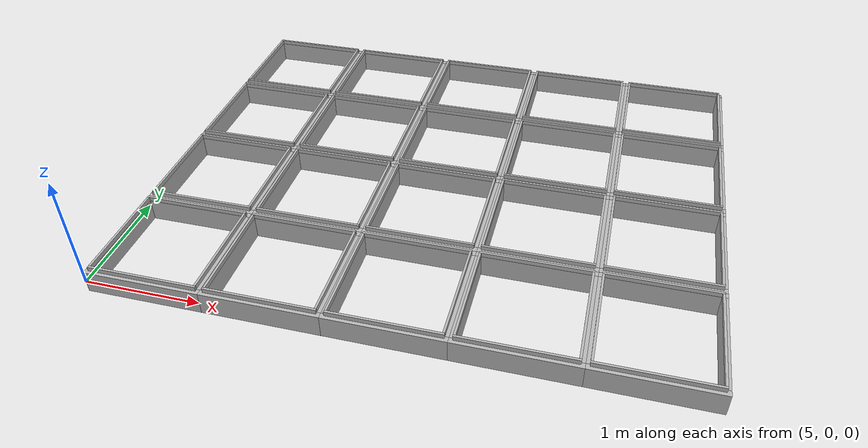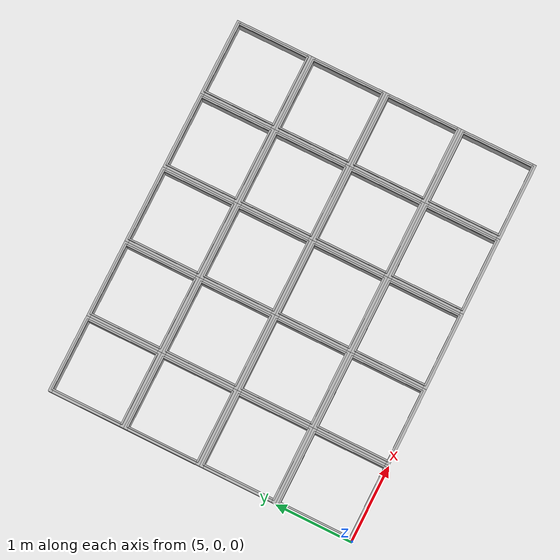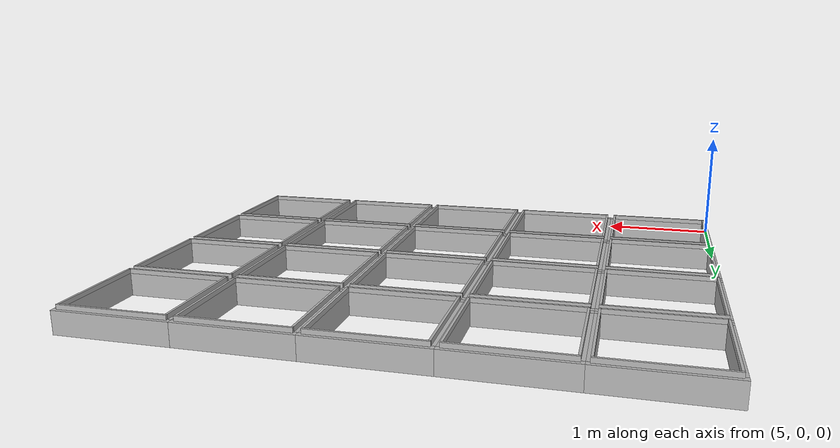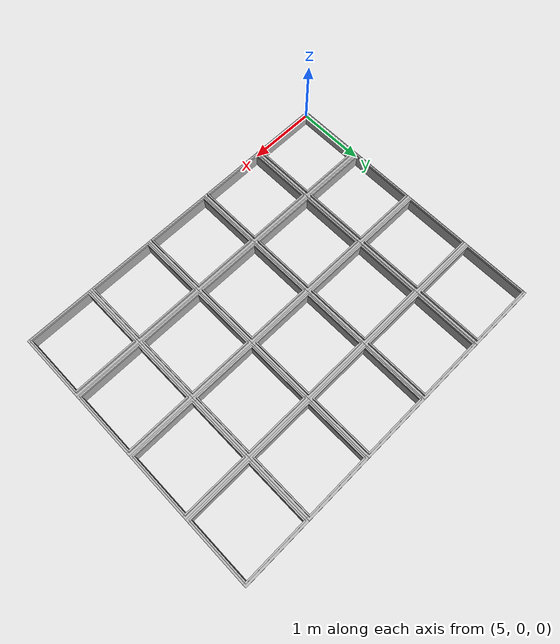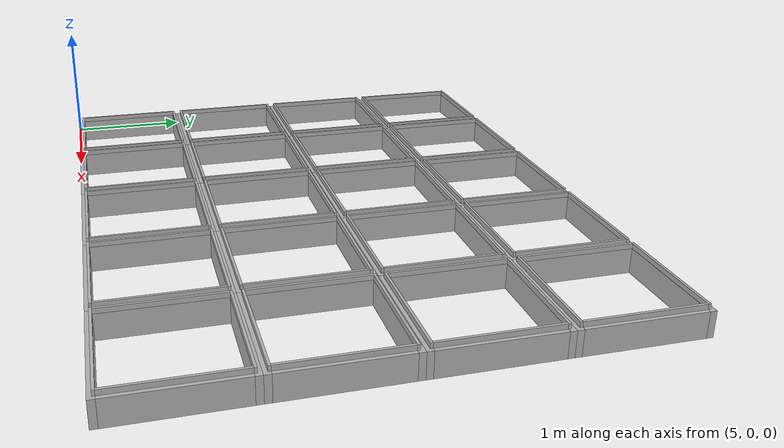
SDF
<sdf version="1.4">
 <model name="Auto Store Frame">
  <static>true</static>
  <link name="cell_50">
   <pose>5.5 0.5 0 0 0 0</pose>
   <collision name="frame_collision_x1">
    <pose>0 -0.475 0 0 0 0</pose>
    <geometry><box><size>1 0.05 0.2 0 0 0</size></box></geometry>
   </collision>
   <collision name="frame_collision_x2">
    <pose>0 0.475 0 0 0 0</pose>
    <geometry><box><size>1 0.05 0.2 0 0 0</size></box></geometry>
   </collision>
   <collision name="frame_collision_y1">
    <pose>-0.475 0 0 0 0 0</pose>
    <geometry><box><size>0.05 0.9 0.2 0 0 0</size></box></geometry>
   </collision>
   <collision name="frame_collision_y2">
    <pose>0.475 0 0 0 0 0</pose>
    <geometry><box><size>0.05 0.9 0.2 0 0 0</size></box></geometry>
   </collision>
   <collision name="guide_collision_x1">
    <pose>0 -0.46 0.12 0 0 0</pose>
    <geometry><box><size>0.94 0.02 0.04 0 0 0</size></box></geometry>
   </collision>
   <collision name="guide_collision_x2">
    <pose>0 0.46 0.12 0 0 0</pose>
    <geometry><box><size>0.94 0.02 0.04 0 0 0</size></box></geometry>
   </collision>
   <collision name="guide_collision_y1">
    <pose>-0.46 0 0.12 0 0 0</pose>
    <geometry><box><size>0.02 0.9 0.04 0 0 0</size></box></geometry>
   </collision>
   <collision name="guide_collision_y2">
    <pose>0.46 0 0.12 0 0 0</pose>
    <geometry><box><size>0.02 0.9 0.04 0 0 0</size></box></geometry>
   </collision>
   <visual name="frame_visual_x1">
    <pose>0 -0.475 0 0 0 0</pose>
    <geometry><box><size>1 0.05 0.2 0 0 0</size></box></geometry>
   </visual>
   <visual name="frame_visual_x2">
    <pose>0 0.475 0 0 0 0</pose>
    <geometry><box><size>1 0.05 0.2 0 0 0</size></box></geometry>
   </visual>
   <visual name="frame_visual_y1">
    <pose>-0.475 0 0 0 0 0</pose>
    <geometry><box><size>0.05 0.9 0.2 0 0 0</size></box></geometry>
   </visual>
   <visual name="frame_visual_y2">
    <pose>0.475 0 0 0 0 0</pose>
    <geometry><box><size>0.05 0.9 0.2 0 0 0</size></box></geometry>
   </visual>
   <visual name="guide_visual_x1">
    <pose>0 -0.46 0.12 0 0 0</pose>
    <geometry><box><size>0.94 0.02 0.04 0 0 0</size></box></geometry>
   </visual>
   <visual name="guide_visual_x2">
    <pose>0 0.46 0.12 0 0 0</pose>
    <geometry><box><size>0.94 0.02 0.04 0 0 0</size></box></geometry>
   </visual>
   <visual name="guide_visual_y1">
    <pose>-0.46 0 0.12 0 0 0</pose>
    <geometry><box><size>0.02 0.9 0.04 0 0 0</size></box></geometry>
   </visual>
   <visual name="guide_visual_y2">
    <pose>0.46 0 0.12 0 0 0</pose>
    <geometry><box><size>0.02 0.9 0.04 0 0 0</size></box></geometry>
   </visual>
  </link>
  <link name="cell_51">
   <pose>5.5 1.5 0 0 0 0</pose>
   <collision name="frame_collision_x1">
    <pose>0 -0.475 0 0 0 0</pose>
    <geometry><box><size>1 0.05 0.2 0 0 0</size></box></geometry>
   </collision>
   <collision name="frame_collision_x2">
    <pose>0 0.475 0 0 0 0</pose>
    <geometry><box><size>1 0.05 0.2 0 0 0</size></box></geometry>
   </collision>
   <collision name="frame_collision_y1">
    <pose>-0.475 0 0 0 0 0</pose>
    <geometry><box><size>0.05 0.9 0.2 0 0 0</size></box></geometry>
   </collision>
   <collision name="frame_collision_y2">
    <pose>0.475 0 0 0 0 0</pose>
    <geometry><box><size>0.05 0.9 0.2 0 0 0</size></box></geometry>
   </collision>
   <collision name="guide_collision_x1">
    <pose>0 -0.46 0.12 0 0 0</pose>
    <geometry><box><size>0.94 0.02 0.04 0 0 0</size></box></geometry>
   </collision>
   <collision name="guide_collision_x2">
    <pose>0 0.46 0.12 0 0 0</pose>
    <geometry><box><size>0.94 0.02 0.04 0 0 0</size></box></geometry>
   </collision>
   <collision name="guide_collision_y1">
    <pose>-0.46 0 0.12 0 0 0</pose>
    <geometry><box><size>0.02 0.9 0.04 0 0 0</size></box></geometry>
   </collision>
   <collision name="guide_collision_y2">
    <pose>0.46 0 0.12 0 0 0</pose>
    <geometry><box><size>0.02 0.9 0.04 0 0 0</size></box></geometry>
   </collision>
   <visual name="frame_visual_x1">
    <pose>0 -0.475 0 0 0 0</pose>
    <geometry><box><size>1 0.05 0.2 0 0 0</size></box></geometry>
   </visual>
   <visual name="frame_visual_x2">
    <pose>0 0.475 0 0 0 0</pose>
    <geometry><box><size>1 0.05 0.2 0 0 0</size></box></geometry>
   </visual>
   <visual name="frame_visual_y1">
    <pose>-0.475 0 0 0 0 0</pose>
    <geometry><box><size>0.05 0.9 0.2 0 0 0</size></box></geometry>
   </visual>
   <visual name="frame_visual_y2">
    <pose>0.475 0 0 0 0 0</pose>
    <geometry><box><size>0.05 0.9 0.2 0 0 0</size></box></geometry>
   </visual>
   <visual name="guide_visual_x1">
    <pose>0 -0.46 0.12 0 0 0</pose>
    <geometry><box><size>0.94 0.02 0.04 0 0 0</size></box></geometry>
   </visual>
   <visual name="guide_visual_x2">
    <pose>0 0.46 0.12 0 0 0</pose>
    <geometry><box><size>0.94 0.02 0.04 0 0 0</size></box></geometry>
   </visual>
   <visual name="guide_visual_y1">
    <pose>-0.46 0 0.12 0 0 0</pose>
    <geometry><box><size>0.02 0.9 0.04 0 0 0</size></box></geometry>
   </visual>
   <visual name="guide_visual_y2">
    <pose>0.46 0 0.12 0 0 0</pose>
    <geometry><box><size>0.02 0.9 0.04 0 0 0</size></box></geometry>
   </visual>
  </link>
  <link name="cell_52">
   <pose>5.5 2.5 0 0 0 0</pose>
   <collision name="frame_collision_x1">
    <pose>0 -0.475 0 0 0 0</pose>
    <geometry><box><size>1 0.05 0.2 0 0 0</size></box></geometry>
   </collision>
   <collision name="frame_collision_x2">
    <pose>0 0.475 0 0 0 0</pose>
    <geometry><box><size>1 0.05 0.2 0 0 0</size></box></geometry>
   </collision>
   <collision name="frame_collision_y1">
    <pose>-0.475 0 0 0 0 0</pose>
    <geometry><box><size>0.05 0.9 0.2 0 0 0</size></box></geometry>
   </collision>
   <collision name="frame_collision_y2">
    <pose>0.475 0 0 0 0 0</pose>
    <geometry><box><size>0.05 0.9 0.2 0 0 0</size></box></geometry>
   </collision>
   <collision name="guide_collision_x1">
    <pose>0 -0.46 0.12 0 0 0</pose>
    <geometry><box><size>0.94 0.02 0.04 0 0 0</size></box></geometry>
   </collision>
   <collision name="guide_collision_x2">
    <pose>0 0.46 0.12 0 0 0</pose>
    <geometry><box><size>0.94 0.02 0.04 0 0 0</size></box></geometry>
   </collision>
   <collision name="guide_collision_y1">
    <pose>-0.46 0 0.12 0 0 0</pose>
    <geometry><box><size>0.02 0.9 0.04 0 0 0</size></box></geometry>
   </collision>
   <collision name="guide_collision_y2">
    <pose>0.46 0 0.12 0 0 0</pose>
    <geometry><box><size>0.02 0.9 0.04 0 0 0</size></box></geometry>
   </collision>
   <visual name="frame_visual_x1">
    <pose>0 -0.475 0 0 0 0</pose>
    <geometry><box><size>1 0.05 0.2 0 0 0</size></box></geometry>
   </visual>
   <visual name="frame_visual_x2">
    <pose>0 0.475 0 0 0 0</pose>
    <geometry><box><size>1 0.05 0.2 0 0 0</size></box></geometry>
   </visual>
   <visual name="frame_visual_y1">
    <pose>-0.475 0 0 0 0 0</pose>
    <geometry><box><size>0.05 0.9 0.2 0 0 0</size></box></geometry>
   </visual>
   <visual name="frame_visual_y2">
    <pose>0.475 0 0 0 0 0</pose>
    <geometry><box><size>0.05 0.9 0.2 0 0 0</size></box></geometry>
   </visual>
   <visual name="guide_visual_x1">
    <pose>0 -0.46 0.12 0 0 0</pose>
    <geometry><box><size>0.94 0.02 0.04 0 0 0</size></box></geometry>
   </visual>
   <visual name="guide_visual_x2">
    <pose>0 0.46 0.12 0 0 0</pose>
    <geometry><box><size>0.94 0.02 0.04 0 0 0</size></box></geometry>
   </visual>
   <visual name="guide_visual_y1">
    <pose>-0.46 0 0.12 0 0 0</pose>
    <geometry><box><size>0.02 0.9 0.04 0 0 0</size></box></geometry>
   </visual>
   <visual name="guide_visual_y2">
    <pose>0.46 0 0.12 0 0 0</pose>
    <geometry><box><size>0.02 0.9 0.04 0 0 0</size></box></geometry>
   </visual>
  </link>
  <link name="cell_53">
   <pose>5.5 3.5 0 0 0 0</pose>
   <collision name="frame_collision_x1">
    <pose>0 -0.475 0 0 0 0</pose>
    <geometry><box><size>1 0.05 0.2 0 0 0</size></box></geometry>
   </collision>
   <collision name="frame_collision_x2">
    <pose>0 0.475 0 0 0 0</pose>
    <geometry><box><size>1 0.05 0.2 0 0 0</size></box></geometry>
   </collision>
   <collision name="frame_collision_y1">
    <pose>-0.475 0 0 0 0 0</pose>
    <geometry><box><size>0.05 0.9 0.2 0 0 0</size></box></geometry>
   </collision>
   <collision name="frame_collision_y2">
    <pose>0.475 0 0 0 0 0</pose>
    <geometry><box><size>0.05 0.9 0.2 0 0 0</size></box></geometry>
   </collision>
   <collision name="guide_collision_x1">
    <pose>0 -0.46 0.12 0 0 0</pose>
    <geometry><box><size>0.94 0.02 0.04 0 0 0</size></box></geometry>
   </collision>
   <collision name="guide_collision_x2">
    <pose>0 0.46 0.12 0 0 0</pose>
    <geometry><box><size>0.94 0.02 0.04 0 0 0</size></box></geometry>
   </collision>
   <collision name="guide_collision_y1">
    <pose>-0.46 0 0.12 0 0 0</pose>
    <geometry><box><size>0.02 0.9 0.04 0 0 0</size></box></geometry>
   </collision>
   <collision name="guide_collision_y2">
    <pose>0.46 0 0.12 0 0 0</pose>
    <geometry><box><size>0.02 0.9 0.04 0 0 0</size></box></geometry>
   </collision>
   <visual name="frame_visual_x1">
    <pose>0 -0.475 0 0 0 0</pose>
    <geometry><box><size>1 0.05 0.2 0 0 0</size></box></geometry>
   </visual>
   <visual name="frame_visual_x2">
    <pose>0 0.475 0 0 0 0</pose>
    <geometry><box><size>1 0.05 0.2 0 0 0</size></box></geometry>
   </visual>
   <visual name="frame_visual_y1">
    <pose>-0.475 0 0 0 0 0</pose>
    <geometry><box><size>0.05 0.9 0.2 0 0 0</size></box></geometry>
   </visual>
   <visual name="frame_visual_y2">
    <pose>0.475 0 0 0 0 0</pose>
    <geometry><box><size>0.05 0.9 0.2 0 0 0</size></box></geometry>
   </visual>
   <visual name="guide_visual_x1">
    <pose>0 -0.46 0.12 0 0 0</pose>
    <geometry><box><size>0.94 0.02 0.04 0 0 0</size></box></geometry>
   </visual>
   <visual name="guide_visual_x2">
    <pose>0 0.46 0.12 0 0 0</pose>
    <geometry><box><size>0.94 0.02 0.04 0 0 0</size></box></geometry>
   </visual>
   <visual name="guide_visual_y1">
    <pose>-0.46 0 0.12 0 0 0</pose>
    <geometry><box><size>0.02 0.9 0.04 0 0 0</size></box></geometry>
   </visual>
   <visual name="guide_visual_y2">
    <pose>0.46 0 0.12 0 0 0</pose>
    <geometry><box><size>0.02 0.9 0.04 0 0 0</size></box></geometry>
   </visual>
  </link>
  <link name="cell_60">
   <pose>6.5 0.5 0 0 0 0</pose>
   <collision name="frame_collision_x1">
    <pose>0 -0.475 0 0 0 0</pose>
    <geometry><box><size>1 0.05 0.2 0 0 0</size></box></geometry>
   </collision>
   <collision name="frame_collision_x2">
    <pose>0 0.475 0 0 0 0</pose>
    <geometry><box><size>1 0.05 0.2 0 0 0</size></box></geometry>
   </collision>
   <collision name="frame_collision_y1">
    <pose>-0.475 0 0 0 0 0</pose>
    <geometry><box><size>0.05 0.9 0.2 0 0 0</size></box></geometry>
   </collision>
   <collision name="frame_collision_y2">
    <pose>0.475 0 0 0 0 0</pose>
    <geometry><box><size>0.05 0.9 0.2 0 0 0</size></box></geometry>
   </collision>
   <collision name="guide_collision_x1">
    <pose>0 -0.46 0.12 0 0 0</pose>
    <geometry><box><size>0.94 0.02 0.04 0 0 0</size></box></geometry>
   </collision>
   <collision name="guide_collision_x2">
    <pose>0 0.46 0.12 0 0 0</pose>
    <geometry><box><size>0.94 0.02 0.04 0 0 0</size></box></geometry>
   </collision>
   <collision name="guide_collision_y1">
    <pose>-0.46 0 0.12 0 0 0</pose>
    <geometry><box><size>0.02 0.9 0.04 0 0 0</size></box></geometry>
   </collision>
   <collision name="guide_collision_y2">
    <pose>0.46 0 0.12 0 0 0</pose>
    <geometry><box><size>0.02 0.9 0.04 0 0 0</size></box></geometry>
   </collision>
   <visual name="frame_visual_x1">
    <pose>0 -0.475 0 0 0 0</pose>
    <geometry><box><size>1 0.05 0.2 0 0 0</size></box></geometry>
   </visual>
   <visual name="frame_visual_x2">
    <pose>0 0.475 0 0 0 0</pose>
    <geometry><box><size>1 0.05 0.2 0 0 0</size></box></geometry>
   </visual>
   <visual name="frame_visual_y1">
    <pose>-0.475 0 0 0 0 0</pose>
    <geometry><box><size>0.05 0.9 0.2 0 0 0</size></box></geometry>
   </visual>
   <visual name="frame_visual_y2">
    <pose>0.475 0 0 0 0 0</pose>
    <geometry><box><size>0.05 0.9 0.2 0 0 0</size></box></geometry>
   </visual>
   <visual name="guide_visual_x1">
    <pose>0 -0.46 0.12 0 0 0</pose>
    <geometry><box><size>0.94 0.02 0.04 0 0 0</size></box></geometry>
   </visual>
   <visual name="guide_visual_x2">
    <pose>0 0.46 0.12 0 0 0</pose>
    <geometry><box><size>0.94 0.02 0.04 0 0 0</size></box></geometry>
   </visual>
   <visual name="guide_visual_y1">
    <pose>-0.46 0 0.12 0 0 0</pose>
    <geometry><box><size>0.02 0.9 0.04 0 0 0</size></box></geometry>
   </visual>
   <visual name="guide_visual_y2">
    <pose>0.46 0 0.12 0 0 0</pose>
    <geometry><box><size>0.02 0.9 0.04 0 0 0</size></box></geometry>
   </visual>
  </link>
  <link name="cell_61">
   <pose>6.5 1.5 0 0 0 0</pose>
   <collision name="frame_collision_x1">
    <pose>0 -0.475 0 0 0 0</pose>
    <geometry><box><size>1 0.05 0.2 0 0 0</size></box></geometry>
   </collision>
   <collision name="frame_collision_x2">
    <pose>0 0.475 0 0 0 0</pose>
    <geometry><box><size>1 0.05 0.2 0 0 0</size></box></geometry>
   </collision>
   <collision name="frame_collision_y1">
    <pose>-0.475 0 0 0 0 0</pose>
    <geometry><box><size>0.05 0.9 0.2 0 0 0</size></box></geometry>
   </collision>
   <collision name="frame_collision_y2">
    <pose>0.475 0 0 0 0 0</pose>
    <geometry><box><size>0.05 0.9 0.2 0 0 0</size></box></geometry>
   </collision>
   <collision name="guide_collision_x1">
    <pose>0 -0.46 0.12 0 0 0</pose>
    <geometry><box><size>0.94 0.02 0.04 0 0 0</size></box></geometry>
   </collision>
   <collision name="guide_collision_x2">
    <pose>0 0.46 0.12 0 0 0</pose>
    <geometry><box><size>0.94 0.02 0.04 0 0 0</size></box></geometry>
   </collision>
   <collision name="guide_collision_y1">
    <pose>-0.46 0 0.12 0 0 0</pose>
    <geometry><box><size>0.02 0.9 0.04 0 0 0</size></box></geometry>
   </collision>
   <collision name="guide_collision_y2">
    <pose>0.46 0 0.12 0 0 0</pose>
    <geometry><box><size>0.02 0.9 0.04 0 0 0</size></box></geometry>
   </collision>
   <visual name="frame_visual_x1">
    <pose>0 -0.475 0 0 0 0</pose>
    <geometry><box><size>1 0.05 0.2 0 0 0</size></box></geometry>
   </visual>
   <visual name="frame_visual_x2">
    <pose>0 0.475 0 0 0 0</pose>
    <geometry><box><size>1 0.05 0.2 0 0 0</size></box></geometry>
   </visual>
   <visual name="frame_visual_y1">
    <pose>-0.475 0 0 0 0 0</pose>
    <geometry><box><size>0.05 0.9 0.2 0 0 0</size></box></geometry>
   </visual>
   <visual name="frame_visual_y2">
    <pose>0.475 0 0 0 0 0</pose>
    <geometry><box><size>0.05 0.9 0.2 0 0 0</size></box></geometry>
   </visual>
   <visual name="guide_visual_x1">
    <pose>0 -0.46 0.12 0 0 0</pose>
    <geometry><box><size>0.94 0.02 0.04 0 0 0</size></box></geometry>
   </visual>
   <visual name="guide_visual_x2">
    <pose>0 0.46 0.12 0 0 0</pose>
    <geometry><box><size>0.94 0.02 0.04 0 0 0</size></box></geometry>
   </visual>
   <visual name="guide_visual_y1">
    <pose>-0.46 0 0.12 0 0 0</pose>
    <geometry><box><size>0.02 0.9 0.04 0 0 0</size></box></geometry>
   </visual>
   <visual name="guide_visual_y2">
    <pose>0.46 0 0.12 0 0 0</pose>
    <geometry><box><size>0.02 0.9 0.04 0 0 0</size></box></geometry>
   </visual>
  </link>
  <link name="cell_62">
   <pose>6.5 2.5 0 0 0 0</pose>
   <collision name="frame_collision_x1">
    <pose>0 -0.475 0 0 0 0</pose>
    <geometry><box><size>1 0.05 0.2 0 0 0</size></box></geometry>
   </collision>
   <collision name="frame_collision_x2">
    <pose>0 0.475 0 0 0 0</pose>
    <geometry><box><size>1 0.05 0.2 0 0 0</size></box></geometry>
   </collision>
   <collision name="frame_collision_y1">
    <pose>-0.475 0 0 0 0 0</pose>
    <geometry><box><size>0.05 0.9 0.2 0 0 0</size></box></geometry>
   </collision>
   <collision name="frame_collision_y2">
    <pose>0.475 0 0 0 0 0</pose>
    <geometry><box><size>0.05 0.9 0.2 0 0 0</size></box></geometry>
   </collision>
   <collision name="guide_collision_x1">
    <pose>0 -0.46 0.12 0 0 0</pose>
    <geometry><box><size>0.94 0.02 0.04 0 0 0</size></box></geometry>
   </collision>
   <collision name="guide_collision_x2">
    <pose>0 0.46 0.12 0 0 0</pose>
    <geometry><box><size>0.94 0.02 0.04 0 0 0</size></box></geometry>
   </collision>
   <collision name="guide_collision_y1">
    <pose>-0.46 0 0.12 0 0 0</pose>
    <geometry><box><size>0.02 0.9 0.04 0 0 0</size></box></geometry>
   </collision>
   <collision name="guide_collision_y2">
    <pose>0.46 0 0.12 0 0 0</pose>
    <geometry><box><size>0.02 0.9 0.04 0 0 0</size></box></geometry>
   </collision>
   <visual name="frame_visual_x1">
    <pose>0 -0.475 0 0 0 0</pose>
    <geometry><box><size>1 0.05 0.2 0 0 0</size></box></geometry>
   </visual>
   <visual name="frame_visual_x2">
    <pose>0 0.475 0 0 0 0</pose>
    <geometry><box><size>1 0.05 0.2 0 0 0</size></box></geometry>
   </visual>
   <visual name="frame_visual_y1">
    <pose>-0.475 0 0 0 0 0</pose>
    <geometry><box><size>0.05 0.9 0.2 0 0 0</size></box></geometry>
   </visual>
   <visual name="frame_visual_y2">
    <pose>0.475 0 0 0 0 0</pose>
    <geometry><box><size>0.05 0.9 0.2 0 0 0</size></box></geometry>
   </visual>
   <visual name="guide_visual_x1">
    <pose>0 -0.46 0.12 0 0 0</pose>
    <geometry><box><size>0.94 0.02 0.04 0 0 0</size></box></geometry>
   </visual>
   <visual name="guide_visual_x2">
    <pose>0 0.46 0.12 0 0 0</pose>
    <geometry><box><size>0.94 0.02 0.04 0 0 0</size></box></geometry>
   </visual>
   <visual name="guide_visual_y1">
    <pose>-0.46 0 0.12 0 0 0</pose>
    <geometry><box><size>0.02 0.9 0.04 0 0 0</size></box></geometry>
   </visual>
   <visual name="guide_visual_y2">
    <pose>0.46 0 0.12 0 0 0</pose>
    <geometry><box><size>0.02 0.9 0.04 0 0 0</size></box></geometry>
   </visual>
  </link>
  <link name="cell_63">
   <pose>6.5 3.5 0 0 0 0</pose>
   <collision name="frame_collision_x1">
    <pose>0 -0.475 0 0 0 0</pose>
    <geometry><box><size>1 0.05 0.2 0 0 0</size></box></geometry>
   </collision>
   <collision name="frame_collision_x2">
    <pose>0 0.475 0 0 0 0</pose>
    <geometry><box><size>1 0.05 0.2 0 0 0</size></box></geometry>
   </collision>
   <collision name="frame_collision_y1">
    <pose>-0.475 0 0 0 0 0</pose>
    <geometry><box><size>0.05 0.9 0.2 0 0 0</size></box></geometry>
   </collision>
   <collision name="frame_collision_y2">
    <pose>0.475 0 0 0 0 0</pose>
    <geometry><box><size>0.05 0.9 0.2 0 0 0</size></box></geometry>
   </collision>
   <collision name="guide_collision_x1">
    <pose>0 -0.46 0.12 0 0 0</pose>
    <geometry><box><size>0.94 0.02 0.04 0 0 0</size></box></geometry>
   </collision>
   <collision name="guide_collision_x2">
    <pose>0 0.46 0.12 0 0 0</pose>
    <geometry><box><size>0.94 0.02 0.04 0 0 0</size></box></geometry>
   </collision>
   <collision name="guide_collision_y1">
    <pose>-0.46 0 0.12 0 0 0</pose>
    <geometry><box><size>0.02 0.9 0.04 0 0 0</size></box></geometry>
   </collision>
   <collision name="guide_collision_y2">
    <pose>0.46 0 0.12 0 0 0</pose>
    <geometry><box><size>0.02 0.9 0.04 0 0 0</size></box></geometry>
   </collision>
   <visual name="frame_visual_x1">
    <pose>0 -0.475 0 0 0 0</pose>
    <geometry><box><size>1 0.05 0.2 0 0 0</size></box></geometry>
   </visual>
   <visual name="frame_visual_x2">
    <pose>0 0.475 0 0 0 0</pose>
    <geometry><box><size>1 0.05 0.2 0 0 0</size></box></geometry>
   </visual>
   <visual name="frame_visual_y1">
    <pose>-0.475 0 0 0 0 0</pose>
    <geometry><box><size>0.05 0.9 0.2 0 0 0</size></box></geometry>
   </visual>
   <visual name="frame_visual_y2">
    <pose>0.475 0 0 0 0 0</pose>
    <geometry><box><size>0.05 0.9 0.2 0 0 0</size></box></geometry>
   </visual>
   <visual name="guide_visual_x1">
    <pose>0 -0.46 0.12 0 0 0</pose>
    <geometry><box><size>0.94 0.02 0.04 0 0 0</size></box></geometry>
   </visual>
   <visual name="guide_visual_x2">
    <pose>0 0.46 0.12 0 0 0</pose>
    <geometry><box><size>0.94 0.02 0.04 0 0 0</size></box></geometry>
   </visual>
   <visual name="guide_visual_y1">
    <pose>-0.46 0 0.12 0 0 0</pose>
    <geometry><box><size>0.02 0.9 0.04 0 0 0</size></box></geometry>
   </visual>
   <visual name="guide_visual_y2">
    <pose>0.46 0 0.12 0 0 0</pose>
    <geometry><box><size>0.02 0.9 0.04 0 0 0</size></box></geometry>
   </visual>
  </link>
  <link name="cell_70">
   <pose>7.5 0.5 0 0 0 0</pose>
   <collision name="frame_collision_x1">
    <pose>0 -0.475 0 0 0 0</pose>
    <geometry><box><size>1 0.05 0.2 0 0 0</size></box></geometry>
   </collision>
   <collision name="frame_collision_x2">
    <pose>0 0.475 0 0 0 0</pose>
    <geometry><box><size>1 0.05 0.2 0 0 0</size></box></geometry>
   </collision>
   <collision name="frame_collision_y1">
    <pose>-0.475 0 0 0 0 0</pose>
    <geometry><box><size>0.05 0.9 0.2 0 0 0</size></box></geometry>
   </collision>
   <collision name="frame_collision_y2">
    <pose>0.475 0 0 0 0 0</pose>
    <geometry><box><size>0.05 0.9 0.2 0 0 0</size></box></geometry>
   </collision>
   <collision name="guide_collision_x1">
    <pose>0 -0.46 0.12 0 0 0</pose>
    <geometry><box><size>0.94 0.02 0.04 0 0 0</size></box></geometry>
   </collision>
   <collision name="guide_collision_x2">
    <pose>0 0.46 0.12 0 0 0</pose>
    <geometry><box><size>0.94 0.02 0.04 0 0 0</size></box></geometry>
   </collision>
   <collision name="guide_collision_y1">
    <pose>-0.46 0 0.12 0 0 0</pose>
    <geometry><box><size>0.02 0.9 0.04 0 0 0</size></box></geometry>
   </collision>
   <collision name="guide_collision_y2">
    <pose>0.46 0 0.12 0 0 0</pose>
    <geometry><box><size>0.02 0.9 0.04 0 0 0</size></box></geometry>
   </collision>
   <visual name="frame_visual_x1">
    <pose>0 -0.475 0 0 0 0</pose>
    <geometry><box><size>1 0.05 0.2 0 0 0</size></box></geometry>
   </visual>
   <visual name="frame_visual_x2">
    <pose>0 0.475 0 0 0 0</pose>
    <geometry><box><size>1 0.05 0.2 0 0 0</size></box></geometry>
   </visual>
   <visual name="frame_visual_y1">
    <pose>-0.475 0 0 0 0 0</pose>
    <geometry><box><size>0.05 0.9 0.2 0 0 0</size></box></geometry>
   </visual>
   <visual name="frame_visual_y2">
    <pose>0.475 0 0 0 0 0</pose>
    <geometry><box><size>0.05 0.9 0.2 0 0 0</size></box></geometry>
   </visual>
   <visual name="guide_visual_x1">
    <pose>0 -0.46 0.12 0 0 0</pose>
    <geometry><box><size>0.94 0.02 0.04 0 0 0</size></box></geometry>
   </visual>
   <visual name="guide_visual_x2">
    <pose>0 0.46 0.12 0 0 0</pose>
    <geometry><box><size>0.94 0.02 0.04 0 0 0</size></box></geometry>
   </visual>
   <visual name="guide_visual_y1">
    <pose>-0.46 0 0.12 0 0 0</pose>
    <geometry><box><size>0.02 0.9 0.04 0 0 0</size></box></geometry>
   </visual>
   <visual name="guide_visual_y2">
    <pose>0.46 0 0.12 0 0 0</pose>
    <geometry><box><size>0.02 0.9 0.04 0 0 0</size></box></geometry>
   </visual>
  </link>
  <link name="cell_71">
   <pose>7.5 1.5 0 0 0 0</pose>
   <collision name="frame_collision_x1">
    <pose>0 -0.475 0 0 0 0</pose>
    <geometry><box><size>1 0.05 0.2 0 0 0</size></box></geometry>
   </collision>
   <collision name="frame_collision_x2">
    <pose>0 0.475 0 0 0 0</pose>
    <geometry><box><size>1 0.05 0.2 0 0 0</size></box></geometry>
   </collision>
   <collision name="frame_collision_y1">
    <pose>-0.475 0 0 0 0 0</pose>
    <geometry><box><size>0.05 0.9 0.2 0 0 0</size></box></geometry>
   </collision>
   <collision name="frame_collision_y2">
    <pose>0.475 0 0 0 0 0</pose>
    <geometry><box><size>0.05 0.9 0.2 0 0 0</size></box></geometry>
   </collision>
   <collision name="guide_collision_x1">
    <pose>0 -0.46 0.12 0 0 0</pose>
    <geometry><box><size>0.94 0.02 0.04 0 0 0</size></box></geometry>
   </collision>
   <collision name="guide_collision_x2">
    <pose>0 0.46 0.12 0 0 0</pose>
    <geometry><box><size>0.94 0.02 0.04 0 0 0</size></box></geometry>
   </collision>
   <collision name="guide_collision_y1">
    <pose>-0.46 0 0.12 0 0 0</pose>
    <geometry><box><size>0.02 0.9 0.04 0 0 0</size></box></geometry>
   </collision>
   <collision name="guide_collision_y2">
    <pose>0.46 0 0.12 0 0 0</pose>
    <geometry><box><size>0.02 0.9 0.04 0 0 0</size></box></geometry>
   </collision>
   <visual name="frame_visual_x1">
    <pose>0 -0.475 0 0 0 0</pose>
    <geometry><box><size>1 0.05 0.2 0 0 0</size></box></geometry>
   </visual>
   <visual name="frame_visual_x2">
    <pose>0 0.475 0 0 0 0</pose>
    <geometry><box><size>1 0.05 0.2 0 0 0</size></box></geometry>
   </visual>
   <visual name="frame_visual_y1">
    <pose>-0.475 0 0 0 0 0</pose>
    <geometry><box><size>0.05 0.9 0.2 0 0 0</size></box></geometry>
   </visual>
   <visual name="frame_visual_y2">
    <pose>0.475 0 0 0 0 0</pose>
    <geometry><box><size>0.05 0.9 0.2 0 0 0</size></box></geometry>
   </visual>
   <visual name="guide_visual_x1">
    <pose>0 -0.46 0.12 0 0 0</pose>
    <geometry><box><size>0.94 0.02 0.04 0 0 0</size></box></geometry>
   </visual>
   <visual name="guide_visual_x2">
    <pose>0 0.46 0.12 0 0 0</pose>
    <geometry><box><size>0.94 0.02 0.04 0 0 0</size></box></geometry>
   </visual>
   <visual name="guide_visual_y1">
    <pose>-0.46 0 0.12 0 0 0</pose>
    <geometry><box><size>0.02 0.9 0.04 0 0 0</size></box></geometry>
   </visual>
   <visual name="guide_visual_y2">
    <pose>0.46 0 0.12 0 0 0</pose>
    <geometry><box><size>0.02 0.9 0.04 0 0 0</size></box></geometry>
   </visual>
  </link>
  <link name="cell_72">
   <pose>7.5 2.5 0 0 0 0</pose>
   <collision name="frame_collision_x1">
    <pose>0 -0.475 0 0 0 0</pose>
    <geometry><box><size>1 0.05 0.2 0 0 0</size></box></geometry>
   </collision>
   <collision name="frame_collision_x2">
    <pose>0 0.475 0 0 0 0</pose>
    <geometry><box><size>1 0.05 0.2 0 0 0</size></box></geometry>
   </collision>
   <collision name="frame_collision_y1">
    <pose>-0.475 0 0 0 0 0</pose>
    <geometry><box><size>0.05 0.9 0.2 0 0 0</size></box></geometry>
   </collision>
   <collision name="frame_collision_y2">
    <pose>0.475 0 0 0 0 0</pose>
    <geometry><box><size>0.05 0.9 0.2 0 0 0</size></box></geometry>
   </collision>
   <collision name="guide_collision_x1">
    <pose>0 -0.46 0.12 0 0 0</pose>
    <geometry><box><size>0.94 0.02 0.04 0 0 0</size></box></geometry>
   </collision>
   <collision name="guide_collision_x2">
    <pose>0 0.46 0.12 0 0 0</pose>
    <geometry><box><size>0.94 0.02 0.04 0 0 0</size></box></geometry>
   </collision>
   <collision name="guide_collision_y1">
    <pose>-0.46 0 0.12 0 0 0</pose>
    <geometry><box><size>0.02 0.9 0.04 0 0 0</size></box></geometry>
   </collision>
   <collision name="guide_collision_y2">
    <pose>0.46 0 0.12 0 0 0</pose>
    <geometry><box><size>0.02 0.9 0.04 0 0 0</size></box></geometry>
   </collision>
   <visual name="frame_visual_x1">
    <pose>0 -0.475 0 0 0 0</pose>
    <geometry><box><size>1 0.05 0.2 0 0 0</size></box></geometry>
   </visual>
   <visual name="frame_visual_x2">
    <pose>0 0.475 0 0 0 0</pose>
    <geometry><box><size>1 0.05 0.2 0 0 0</size></box></geometry>
   </visual>
   <visual name="frame_visual_y1">
    <pose>-0.475 0 0 0 0 0</pose>
    <geometry><box><size>0.05 0.9 0.2 0 0 0</size></box></geometry>
   </visual>
   <visual name="frame_visual_y2">
    <pose>0.475 0 0 0 0 0</pose>
    <geometry><box><size>0.05 0.9 0.2 0 0 0</size></box></geometry>
   </visual>
   <visual name="guide_visual_x1">
    <pose>0 -0.46 0.12 0 0 0</pose>
    <geometry><box><size>0.94 0.02 0.04 0 0 0</size></box></geometry>
   </visual>
   <visual name="guide_visual_x2">
    <pose>0 0.46 0.12 0 0 0</pose>
    <geometry><box><size>0.94 0.02 0.04 0 0 0</size></box></geometry>
   </visual>
   <visual name="guide_visual_y1">
    <pose>-0.46 0 0.12 0 0 0</pose>
    <geometry><box><size>0.02 0.9 0.04 0 0 0</size></box></geometry>
   </visual>
   <visual name="guide_visual_y2">
    <pose>0.46 0 0.12 0 0 0</pose>
    <geometry><box><size>0.02 0.9 0.04 0 0 0</size></box></geometry>
   </visual>
  </link>
  <link name="cell_73">
   <pose>7.5 3.5 0 0 0 0</pose>
   <collision name="frame_collision_x1">
    <pose>0 -0.475 0 0 0 0</pose>
    <geometry><box><size>1 0.05 0.2 0 0 0</size></box></geometry>
   </collision>
   <collision name="frame_collision_x2">
    <pose>0 0.475 0 0 0 0</pose>
    <geometry><box><size>1 0.05 0.2 0 0 0</size></box></geometry>
   </collision>
   <collision name="frame_collision_y1">
    <pose>-0.475 0 0 0 0 0</pose>
    <geometry><box><size>0.05 0.9 0.2 0 0 0</size></box></geometry>
   </collision>
   <collision name="frame_collision_y2">
    <pose>0.475 0 0 0 0 0</pose>
    <geometry><box><size>0.05 0.9 0.2 0 0 0</size></box></geometry>
   </collision>
   <collision name="guide_collision_x1">
    <pose>0 -0.46 0.12 0 0 0</pose>
    <geometry><box><size>0.94 0.02 0.04 0 0 0</size></box></geometry>
   </collision>
   <collision name="guide_collision_x2">
    <pose>0 0.46 0.12 0 0 0</pose>
    <geometry><box><size>0.94 0.02 0.04 0 0 0</size></box></geometry>
   </collision>
   <collision name="guide_collision_y1">
    <pose>-0.46 0 0.12 0 0 0</pose>
    <geometry><box><size>0.02 0.9 0.04 0 0 0</size></box></geometry>
   </collision>
   <collision name="guide_collision_y2">
    <pose>0.46 0 0.12 0 0 0</pose>
    <geometry><box><size>0.02 0.9 0.04 0 0 0</size></box></geometry>
   </collision>
   <visual name="frame_visual_x1">
    <pose>0 -0.475 0 0 0 0</pose>
    <geometry><box><size>1 0.05 0.2 0 0 0</size></box></geometry>
   </visual>
   <visual name="frame_visual_x2">
    <pose>0 0.475 0 0 0 0</pose>
    <geometry><box><size>1 0.05 0.2 0 0 0</size></box></geometry>
   </visual>
   <visual name="frame_visual_y1">
    <pose>-0.475 0 0 0 0 0</pose>
    <geometry><box><size>0.05 0.9 0.2 0 0 0</size></box></geometry>
   </visual>
   <visual name="frame_visual_y2">
    <pose>0.475 0 0 0 0 0</pose>
    <geometry><box><size>0.05 0.9 0.2 0 0 0</size></box></geometry>
   </visual>
   <visual name="guide_visual_x1">
    <pose>0 -0.46 0.12 0 0 0</pose>
    <geometry><box><size>0.94 0.02 0.04 0 0 0</size></box></geometry>
   </visual>
   <visual name="guide_visual_x2">
    <pose>0 0.46 0.12 0 0 0</pose>
    <geometry><box><size>0.94 0.02 0.04 0 0 0</size></box></geometry>
   </visual>
   <visual name="guide_visual_y1">
    <pose>-0.46 0 0.12 0 0 0</pose>
    <geometry><box><size>0.02 0.9 0.04 0 0 0</size></box></geometry>
   </visual>
   <visual name="guide_visual_y2">
    <pose>0.46 0 0.12 0 0 0</pose>
    <geometry><box><size>0.02 0.9 0.04 0 0 0</size></box></geometry>
   </visual>
  </link>
  <link name="cell_80">
   <pose>8.5 0.5 0 0 0 0</pose>
   <collision name="frame_collision_x1">
    <pose>0 -0.475 0 0 0 0</pose>
    <geometry><box><size>1 0.05 0.2 0 0 0</size></box></geometry>
   </collision>
   <collision name="frame_collision_x2">
    <pose>0 0.475 0 0 0 0</pose>
    <geometry><box><size>1 0.05 0.2 0 0 0</size></box></geometry>
   </collision>
   <collision name="frame_collision_y1">
    <pose>-0.475 0 0 0 0 0</pose>
    <geometry><box><size>0.05 0.9 0.2 0 0 0</size></box></geometry>
   </collision>
   <collision name="frame_collision_y2">
    <pose>0.475 0 0 0 0 0</pose>
    <geometry><box><size>0.05 0.9 0.2 0 0 0</size></box></geometry>
   </collision>
   <collision name="guide_collision_x1">
    <pose>0 -0.46 0.12 0 0 0</pose>
    <geometry><box><size>0.94 0.02 0.04 0 0 0</size></box></geometry>
   </collision>
   <collision name="guide_collision_x2">
    <pose>0 0.46 0.12 0 0 0</pose>
    <geometry><box><size>0.94 0.02 0.04 0 0 0</size></box></geometry>
   </collision>
   <collision name="guide_collision_y1">
    <pose>-0.46 0 0.12 0 0 0</pose>
    <geometry><box><size>0.02 0.9 0.04 0 0 0</size></box></geometry>
   </collision>
   <collision name="guide_collision_y2">
    <pose>0.46 0 0.12 0 0 0</pose>
    <geometry><box><size>0.02 0.9 0.04 0 0 0</size></box></geometry>
   </collision>
   <visual name="frame_visual_x1">
    <pose>0 -0.475 0 0 0 0</pose>
    <geometry><box><size>1 0.05 0.2 0 0 0</size></box></geometry>
   </visual>
   <visual name="frame_visual_x2">
    <pose>0 0.475 0 0 0 0</pose>
    <geometry><box><size>1 0.05 0.2 0 0 0</size></box></geometry>
   </visual>
   <visual name="frame_visual_y1">
    <pose>-0.475 0 0 0 0 0</pose>
    <geometry><box><size>0.05 0.9 0.2 0 0 0</size></box></geometry>
   </visual>
   <visual name="frame_visual_y2">
    <pose>0.475 0 0 0 0 0</pose>
    <geometry><box><size>0.05 0.9 0.2 0 0 0</size></box></geometry>
   </visual>
   <visual name="guide_visual_x1">
    <pose>0 -0.46 0.12 0 0 0</pose>
    <geometry><box><size>0.94 0.02 0.04 0 0 0</size></box></geometry>
   </visual>
   <visual name="guide_visual_x2">
    <pose>0 0.46 0.12 0 0 0</pose>
    <geometry><box><size>0.94 0.02 0.04 0 0 0</size></box></geometry>
   </visual>
   <visual name="guide_visual_y1">
    <pose>-0.46 0 0.12 0 0 0</pose>
    <geometry><box><size>0.02 0.9 0.04 0 0 0</size></box></geometry>
   </visual>
   <visual name="guide_visual_y2">
    <pose>0.46 0 0.12 0 0 0</pose>
    <geometry><box><size>0.02 0.9 0.04 0 0 0</size></box></geometry>
   </visual>
  </link>
  <link name="cell_81">
   <pose>8.5 1.5 0 0 0 0</pose>
   <collision name="frame_collision_x1">
    <pose>0 -0.475 0 0 0 0</pose>
    <geometry><box><size>1 0.05 0.2 0 0 0</size></box></geometry>
   </collision>
   <collision name="frame_collision_x2">
    <pose>0 0.475 0 0 0 0</pose>
    <geometry><box><size>1 0.05 0.2 0 0 0</size></box></geometry>
   </collision>
   <collision name="frame_collision_y1">
    <pose>-0.475 0 0 0 0 0</pose>
    <geometry><box><size>0.05 0.9 0.2 0 0 0</size></box></geometry>
   </collision>
   <collision name="frame_collision_y2">
    <pose>0.475 0 0 0 0 0</pose>
    <geometry><box><size>0.05 0.9 0.2 0 0 0</size></box></geometry>
   </collision>
   <collision name="guide_collision_x1">
    <pose>0 -0.46 0.12 0 0 0</pose>
    <geometry><box><size>0.94 0.02 0.04 0 0 0</size></box></geometry>
   </collision>
   <collision name="guide_collision_x2">
    <pose>0 0.46 0.12 0 0 0</pose>
    <geometry><box><size>0.94 0.02 0.04 0 0 0</size></box></geometry>
   </collision>
   <collision name="guide_collision_y1">
    <pose>-0.46 0 0.12 0 0 0</pose>
    <geometry><box><size>0.02 0.9 0.04 0 0 0</size></box></geometry>
   </collision>
   <collision name="guide_collision_y2">
    <pose>0.46 0 0.12 0 0 0</pose>
    <geometry><box><size>0.02 0.9 0.04 0 0 0</size></box></geometry>
   </collision>
   <visual name="frame_visual_x1">
    <pose>0 -0.475 0 0 0 0</pose>
    <geometry><box><size>1 0.05 0.2 0 0 0</size></box></geometry>
   </visual>
   <visual name="frame_visual_x2">
    <pose>0 0.475 0 0 0 0</pose>
    <geometry><box><size>1 0.05 0.2 0 0 0</size></box></geometry>
   </visual>
   <visual name="frame_visual_y1">
    <pose>-0.475 0 0 0 0 0</pose>
    <geometry><box><size>0.05 0.9 0.2 0 0 0</size></box></geometry>
   </visual>
   <visual name="frame_visual_y2">
    <pose>0.475 0 0 0 0 0</pose>
    <geometry><box><size>0.05 0.9 0.2 0 0 0</size></box></geometry>
   </visual>
   <visual name="guide_visual_x1">
    <pose>0 -0.46 0.12 0 0 0</pose>
    <geometry><box><size>0.94 0.02 0.04 0 0 0</size></box></geometry>
   </visual>
   <visual name="guide_visual_x2">
    <pose>0 0.46 0.12 0 0 0</pose>
    <geometry><box><size>0.94 0.02 0.04 0 0 0</size></box></geometry>
   </visual>
   <visual name="guide_visual_y1">
    <pose>-0.46 0 0.12 0 0 0</pose>
    <geometry><box><size>0.02 0.9 0.04 0 0 0</size></box></geometry>
   </visual>
   <visual name="guide_visual_y2">
    <pose>0.46 0 0.12 0 0 0</pose>
    <geometry><box><size>0.02 0.9 0.04 0 0 0</size></box></geometry>
   </visual>
  </link>
  <link name="cell_82">
   <pose>8.5 2.5 0 0 0 0</pose>
   <collision name="frame_collision_x1">
    <pose>0 -0.475 0 0 0 0</pose>
    <geometry><box><size>1 0.05 0.2 0 0 0</size></box></geometry>
   </collision>
   <collision name="frame_collision_x2">
    <pose>0 0.475 0 0 0 0</pose>
    <geometry><box><size>1 0.05 0.2 0 0 0</size></box></geometry>
   </collision>
   <collision name="frame_collision_y1">
    <pose>-0.475 0 0 0 0 0</pose>
    <geometry><box><size>0.05 0.9 0.2 0 0 0</size></box></geometry>
   </collision>
   <collision name="frame_collision_y2">
    <pose>0.475 0 0 0 0 0</pose>
    <geometry><box><size>0.05 0.9 0.2 0 0 0</size></box></geometry>
   </collision>
   <collision name="guide_collision_x1">
    <pose>0 -0.46 0.12 0 0 0</pose>
    <geometry><box><size>0.94 0.02 0.04 0 0 0</size></box></geometry>
   </collision>
   <collision name="guide_collision_x2">
    <pose>0 0.46 0.12 0 0 0</pose>
    <geometry><box><size>0.94 0.02 0.04 0 0 0</size></box></geometry>
   </collision>
   <collision name="guide_collision_y1">
    <pose>-0.46 0 0.12 0 0 0</pose>
    <geometry><box><size>0.02 0.9 0.04 0 0 0</size></box></geometry>
   </collision>
   <collision name="guide_collision_y2">
    <pose>0.46 0 0.12 0 0 0</pose>
    <geometry><box><size>0.02 0.9 0.04 0 0 0</size></box></geometry>
   </collision>
   <visual name="frame_visual_x1">
    <pose>0 -0.475 0 0 0 0</pose>
    <geometry><box><size>1 0.05 0.2 0 0 0</size></box></geometry>
   </visual>
   <visual name="frame_visual_x2">
    <pose>0 0.475 0 0 0 0</pose>
    <geometry><box><size>1 0.05 0.2 0 0 0</size></box></geometry>
   </visual>
   <visual name="frame_visual_y1">
    <pose>-0.475 0 0 0 0 0</pose>
    <geometry><box><size>0.05 0.9 0.2 0 0 0</size></box></geometry>
   </visual>
   <visual name="frame_visual_y2">
    <pose>0.475 0 0 0 0 0</pose>
    <geometry><box><size>0.05 0.9 0.2 0 0 0</size></box></geometry>
   </visual>
   <visual name="guide_visual_x1">
    <pose>0 -0.46 0.12 0 0 0</pose>
    <geometry><box><size>0.94 0.02 0.04 0 0 0</size></box></geometry>
   </visual>
   <visual name="guide_visual_x2">
    <pose>0 0.46 0.12 0 0 0</pose>
    <geometry><box><size>0.94 0.02 0.04 0 0 0</size></box></geometry>
   </visual>
   <visual name="guide_visual_y1">
    <pose>-0.46 0 0.12 0 0 0</pose>
    <geometry><box><size>0.02 0.9 0.04 0 0 0</size></box></geometry>
   </visual>
   <visual name="guide_visual_y2">
    <pose>0.46 0 0.12 0 0 0</pose>
    <geometry><box><size>0.02 0.9 0.04 0 0 0</size></box></geometry>
   </visual>
  </link>
  <link name="cell_83">
   <pose>8.5 3.5 0 0 0 0</pose>
   <collision name="frame_collision_x1">
    <pose>0 -0.475 0 0 0 0</pose>
    <geometry><box><size>1 0.05 0.2 0 0 0</size></box></geometry>
   </collision>
   <collision name="frame_collision_x2">
    <pose>0 0.475 0 0 0 0</pose>
    <geometry><box><size>1 0.05 0.2 0 0 0</size></box></geometry>
   </collision>
   <collision name="frame_collision_y1">
    <pose>-0.475 0 0 0 0 0</pose>
    <geometry><box><size>0.05 0.9 0.2 0 0 0</size></box></geometry>
   </collision>
   <collision name="frame_collision_y2">
    <pose>0.475 0 0 0 0 0</pose>
    <geometry><box><size>0.05 0.9 0.2 0 0 0</size></box></geometry>
   </collision>
   <collision name="guide_collision_x1">
    <pose>0 -0.46 0.12 0 0 0</pose>
    <geometry><box><size>0.94 0.02 0.04 0 0 0</size></box></geometry>
   </collision>
   <collision name="guide_collision_x2">
    <pose>0 0.46 0.12 0 0 0</pose>
    <geometry><box><size>0.94 0.02 0.04 0 0 0</size></box></geometry>
   </collision>
   <collision name="guide_collision_y1">
    <pose>-0.46 0 0.12 0 0 0</pose>
    <geometry><box><size>0.02 0.9 0.04 0 0 0</size></box></geometry>
   </collision>
   <collision name="guide_collision_y2">
    <pose>0.46 0 0.12 0 0 0</pose>
    <geometry><box><size>0.02 0.9 0.04 0 0 0</size></box></geometry>
   </collision>
   <visual name="frame_visual_x1">
    <pose>0 -0.475 0 0 0 0</pose>
    <geometry><box><size>1 0.05 0.2 0 0 0</size></box></geometry>
   </visual>
   <visual name="frame_visual_x2">
    <pose>0 0.475 0 0 0 0</pose>
    <geometry><box><size>1 0.05 0.2 0 0 0</size></box></geometry>
   </visual>
   <visual name="frame_visual_y1">
    <pose>-0.475 0 0 0 0 0</pose>
    <geometry><box><size>0.05 0.9 0.2 0 0 0</size></box></geometry>
   </visual>
   <visual name="frame_visual_y2">
    <pose>0.475 0 0 0 0 0</pose>
    <geometry><box><size>0.05 0.9 0.2 0 0 0</size></box></geometry>
   </visual>
   <visual name="guide_visual_x1">
    <pose>0 -0.46 0.12 0 0 0</pose>
    <geometry><box><size>0.94 0.02 0.04 0 0 0</size></box></geometry>
   </visual>
   <visual name="guide_visual_x2">
    <pose>0 0.46 0.12 0 0 0</pose>
    <geometry><box><size>0.94 0.02 0.04 0 0 0</size></box></geometry>
   </visual>
   <visual name="guide_visual_y1">
    <pose>-0.46 0 0.12 0 0 0</pose>
    <geometry><box><size>0.02 0.9 0.04 0 0 0</size></box></geometry>
   </visual>
   <visual name="guide_visual_y2">
    <pose>0.46 0 0.12 0 0 0</pose>
    <geometry><box><size>0.02 0.9 0.04 0 0 0</size></box></geometry>
   </visual>
  </link>
  <link name="cell_90">
   <pose>9.5 0.5 0 0 0 0</pose>
   <collision name="frame_collision_x1">
    <pose>0 -0.475 0 0 0 0</pose>
    <geometry><box><size>1 0.05 0.2 0 0 0</size></box></geometry>
   </collision>
   <collision name="frame_collision_x2">
    <pose>0 0.475 0 0 0 0</pose>
    <geometry><box><size>1 0.05 0.2 0 0 0</size></box></geometry>
   </collision>
   <collision name="frame_collision_y1">
    <pose>-0.475 0 0 0 0 0</pose>
    <geometry><box><size>0.05 0.9 0.2 0 0 0</size></box></geometry>
   </collision>
   <collision name="frame_collision_y2">
    <pose>0.475 0 0 0 0 0</pose>
    <geometry><box><size>0.05 0.9 0.2 0 0 0</size></box></geometry>
   </collision>
   <collision name="guide_collision_x1">
    <pose>0 -0.46 0.12 0 0 0</pose>
    <geometry><box><size>0.94 0.02 0.04 0 0 0</size></box></geometry>
   </collision>
   <collision name="guide_collision_x2">
    <pose>0 0.46 0.12 0 0 0</pose>
    <geometry><box><size>0.94 0.02 0.04 0 0 0</size></box></geometry>
   </collision>
   <collision name="guide_collision_y1">
    <pose>-0.46 0 0.12 0 0 0</pose>
    <geometry><box><size>0.02 0.9 0.04 0 0 0</size></box></geometry>
   </collision>
   <collision name="guide_collision_y2">
    <pose>0.46 0 0.12 0 0 0</pose>
    <geometry><box><size>0.02 0.9 0.04 0 0 0</size></box></geometry>
   </collision>
   <visual name="frame_visual_x1">
    <pose>0 -0.475 0 0 0 0</pose>
    <geometry><box><size>1 0.05 0.2 0 0 0</size></box></geometry>
   </visual>
   <visual name="frame_visual_x2">
    <pose>0 0.475 0 0 0 0</pose>
    <geometry><box><size>1 0.05 0.2 0 0 0</size></box></geometry>
   </visual>
   <visual name="frame_visual_y1">
    <pose>-0.475 0 0 0 0 0</pose>
    <geometry><box><size>0.05 0.9 0.2 0 0 0</size></box></geometry>
   </visual>
   <visual name="frame_visual_y2">
    <pose>0.475 0 0 0 0 0</pose>
    <geometry><box><size>0.05 0.9 0.2 0 0 0</size></box></geometry>
   </visual>
   <visual name="guide_visual_x1">
    <pose>0 -0.46 0.12 0 0 0</pose>
    <geometry><box><size>0.94 0.02 0.04 0 0 0</size></box></geometry>
   </visual>
   <visual name="guide_visual_x2">
    <pose>0 0.46 0.12 0 0 0</pose>
    <geometry><box><size>0.94 0.02 0.04 0 0 0</size></box></geometry>
   </visual>
   <visual name="guide_visual_y1">
    <pose>-0.46 0 0.12 0 0 0</pose>
    <geometry><box><size>0.02 0.9 0.04 0 0 0</size></box></geometry>
   </visual>
   <visual name="guide_visual_y2">
    <pose>0.46 0 0.12 0 0 0</pose>
    <geometry><box><size>0.02 0.9 0.04 0 0 0</size></box></geometry>
   </visual>
  </link>
  <link name="cell_91">
   <pose>9.5 1.5 0 0 0 0</pose>
   <collision name="frame_collision_x1">
    <pose>0 -0.475 0 0 0 0</pose>
    <geometry><box><size>1 0.05 0.2 0 0 0</size></box></geometry>
   </collision>
   <collision name="frame_collision_x2">
    <pose>0 0.475 0 0 0 0</pose>
    <geometry><box><size>1 0.05 0.2 0 0 0</size></box></geometry>
   </collision>
   <collision name="frame_collision_y1">
    <pose>-0.475 0 0 0 0 0</pose>
    <geometry><box><size>0.05 0.9 0.2 0 0 0</size></box></geometry>
   </collision>
   <collision name="frame_collision_y2">
    <pose>0.475 0 0 0 0 0</pose>
    <geometry><box><size>0.05 0.9 0.2 0 0 0</size></box></geometry>
   </collision>
   <collision name="guide_collision_x1">
    <pose>0 -0.46 0.12 0 0 0</pose>
    <geometry><box><size>0.94 0.02 0.04 0 0 0</size></box></geometry>
   </collision>
   <collision name="guide_collision_x2">
    <pose>0 0.46 0.12 0 0 0</pose>
    <geometry><box><size>0.94 0.02 0.04 0 0 0</size></box></geometry>
   </collision>
   <collision name="guide_collision_y1">
    <pose>-0.46 0 0.12 0 0 0</pose>
    <geometry><box><size>0.02 0.9 0.04 0 0 0</size></box></geometry>
   </collision>
   <collision name="guide_collision_y2">
    <pose>0.46 0 0.12 0 0 0</pose>
    <geometry><box><size>0.02 0.9 0.04 0 0 0</size></box></geometry>
   </collision>
   <visual name="frame_visual_x1">
    <pose>0 -0.475 0 0 0 0</pose>
    <geometry><box><size>1 0.05 0.2 0 0 0</size></box></geometry>
   </visual>
   <visual name="frame_visual_x2">
    <pose>0 0.475 0 0 0 0</pose>
    <geometry><box><size>1 0.05 0.2 0 0 0</size></box></geometry>
   </visual>
   <visual name="frame_visual_y1">
    <pose>-0.475 0 0 0 0 0</pose>
    <geometry><box><size>0.05 0.9 0.2 0 0 0</size></box></geometry>
   </visual>
   <visual name="frame_visual_y2">
    <pose>0.475 0 0 0 0 0</pose>
    <geometry><box><size>0.05 0.9 0.2 0 0 0</size></box></geometry>
   </visual>
   <visual name="guide_visual_x1">
    <pose>0 -0.46 0.12 0 0 0</pose>
    <geometry><box><size>0.94 0.02 0.04 0 0 0</size></box></geometry>
   </visual>
   <visual name="guide_visual_x2">
    <pose>0 0.46 0.12 0 0 0</pose>
    <geometry><box><size>0.94 0.02 0.04 0 0 0</size></box></geometry>
   </visual>
   <visual name="guide_visual_y1">
    <pose>-0.46 0 0.12 0 0 0</pose>
    <geometry><box><size>0.02 0.9 0.04 0 0 0</size></box></geometry>
   </visual>
   <visual name="guide_visual_y2">
    <pose>0.46 0 0.12 0 0 0</pose>
    <geometry><box><size>0.02 0.9 0.04 0 0 0</size></box></geometry>
   </visual>
  </link>
  <link name="cell_92">
   <pose>9.5 2.5 0 0 0 0</pose>
   <collision name="frame_collision_x1">
    <pose>0 -0.475 0 0 0 0</pose>
    <geometry><box><size>1 0.05 0.2 0 0 0</size></box></geometry>
   </collision>
   <collision name="frame_collision_x2">
    <pose>0 0.475 0 0 0 0</pose>
    <geometry><box><size>1 0.05 0.2 0 0 0</size></box></geometry>
   </collision>
   <collision name="frame_collision_y1">
    <pose>-0.475 0 0 0 0 0</pose>
    <geometry><box><size>0.05 0.9 0.2 0 0 0</size></box></geometry>
   </collision>
   <collision name="frame_collision_y2">
    <pose>0.475 0 0 0 0 0</pose>
    <geometry><box><size>0.05 0.9 0.2 0 0 0</size></box></geometry>
   </collision>
   <collision name="guide_collision_x1">
    <pose>0 -0.46 0.12 0 0 0</pose>
    <geometry><box><size>0.94 0.02 0.04 0 0 0</size></box></geometry>
   </collision>
   <collision name="guide_collision_x2">
    <pose>0 0.46 0.12 0 0 0</pose>
    <geometry><box><size>0.94 0.02 0.04 0 0 0</size></box></geometry>
   </collision>
   <collision name="guide_collision_y1">
    <pose>-0.46 0 0.12 0 0 0</pose>
    <geometry><box><size>0.02 0.9 0.04 0 0 0</size></box></geometry>
   </collision>
   <collision name="guide_collision_y2">
    <pose>0.46 0 0.12 0 0 0</pose>
    <geometry><box><size>0.02 0.9 0.04 0 0 0</size></box></geometry>
   </collision>
   <visual name="frame_visual_x1">
    <pose>0 -0.475 0 0 0 0</pose>
    <geometry><box><size>1 0.05 0.2 0 0 0</size></box></geometry>
   </visual>
   <visual name="frame_visual_x2">
    <pose>0 0.475 0 0 0 0</pose>
    <geometry><box><size>1 0.05 0.2 0 0 0</size></box></geometry>
   </visual>
   <visual name="frame_visual_y1">
    <pose>-0.475 0 0 0 0 0</pose>
    <geometry><box><size>0.05 0.9 0.2 0 0 0</size></box></geometry>
   </visual>
   <visual name="frame_visual_y2">
    <pose>0.475 0 0 0 0 0</pose>
    <geometry><box><size>0.05 0.9 0.2 0 0 0</size></box></geometry>
   </visual>
   <visual name="guide_visual_x1">
    <pose>0 -0.46 0.12 0 0 0</pose>
    <geometry><box><size>0.94 0.02 0.04 0 0 0</size></box></geometry>
   </visual>
   <visual name="guide_visual_x2">
    <pose>0 0.46 0.12 0 0 0</pose>
    <geometry><box><size>0.94 0.02 0.04 0 0 0</size></box></geometry>
   </visual>
   <visual name="guide_visual_y1">
    <pose>-0.46 0 0.12 0 0 0</pose>
    <geometry><box><size>0.02 0.9 0.04 0 0 0</size></box></geometry>
   </visual>
   <visual name="guide_visual_y2">
    <pose>0.46 0 0.12 0 0 0</pose>
    <geometry><box><size>0.02 0.9 0.04 0 0 0</size></box></geometry>
   </visual>
  </link>
  <link name="cell_93">
   <pose>9.5 3.5 0 0 0 0</pose>
   <collision name="frame_collision_x1">
    <pose>0 -0.475 0 0 0 0</pose>
    <geometry><box><size>1 0.05 0.2 0 0 0</size></box></geometry>
   </collision>
   <collision name="frame_collision_x2">
    <pose>0 0.475 0 0 0 0</pose>
    <geometry><box><size>1 0.05 0.2 0 0 0</size></box></geometry>
   </collision>
   <collision name="frame_collision_y1">
    <pose>-0.475 0 0 0 0 0</pose>
    <geometry><box><size>0.05 0.9 0.2 0 0 0</size></box></geometry>
   </collision>
   <collision name="frame_collision_y2">
    <pose>0.475 0 0 0 0 0</pose>
    <geometry><box><size>0.05 0.9 0.2 0 0 0</size></box></geometry>
   </collision>
   <collision name="guide_collision_x1">
    <pose>0 -0.46 0.12 0 0 0</pose>
    <geometry><box><size>0.94 0.02 0.04 0 0 0</size></box></geometry>
   </collision>
   <collision name="guide_collision_x2">
    <pose>0 0.46 0.12 0 0 0</pose>
    <geometry><box><size>0.94 0.02 0.04 0 0 0</size></box></geometry>
   </collision>
   <collision name="guide_collision_y1">
    <pose>-0.46 0 0.12 0 0 0</pose>
    <geometry><box><size>0.02 0.9 0.04 0 0 0</size></box></geometry>
   </collision>
   <collision name="guide_collision_y2">
    <pose>0.46 0 0.12 0 0 0</pose>
    <geometry><box><size>0.02 0.9 0.04 0 0 0</size></box></geometry>
   </collision>
   <visual name="frame_visual_x1">
    <pose>0 -0.475 0 0 0 0</pose>
    <geometry><box><size>1 0.05 0.2 0 0 0</size></box></geometry>
   </visual>
   <visual name="frame_visual_x2">
    <pose>0 0.475 0 0 0 0</pose>
    <geometry><box><size>1 0.05 0.2 0 0 0</size></box></geometry>
   </visual>
   <visual name="frame_visual_y1">
    <pose>-0.475 0 0 0 0 0</pose>
    <geometry><box><size>0.05 0.9 0.2 0 0 0</size></box></geometry>
   </visual>
   <visual name="frame_visual_y2">
    <pose>0.475 0 0 0 0 0</pose>
    <geometry><box><size>0.05 0.9 0.2 0 0 0</size></box></geometry>
   </visual>
   <visual name="guide_visual_x1">
    <pose>0 -0.46 0.12 0 0 0</pose>
    <geometry><box><size>0.94 0.02 0.04 0 0 0</size></box></geometry>
   </visual>
   <visual name="guide_visual_x2">
    <pose>0 0.46 0.12 0 0 0</pose>
    <geometry><box><size>0.94 0.02 0.04 0 0 0</size></box></geometry>
   </visual>
   <visual name="guide_visual_y1">
    <pose>-0.46 0 0.12 0 0 0</pose>
    <geometry><box><size>0.02 0.9 0.04 0 0 0</size></box></geometry>
   </visual>
   <visual name="guide_visual_y2">
    <pose>0.46 0 0.12 0 0 0</pose>
    <geometry><box><size>0.02 0.9 0.04 0 0 0</size></box></geometry>
   </visual>
  </link>
 </model>
</sdf>
